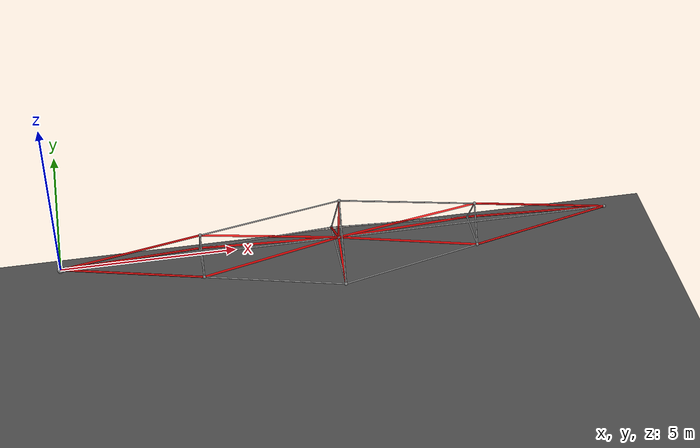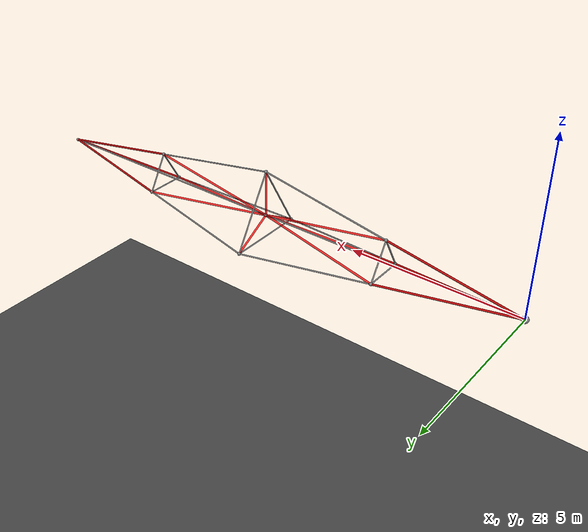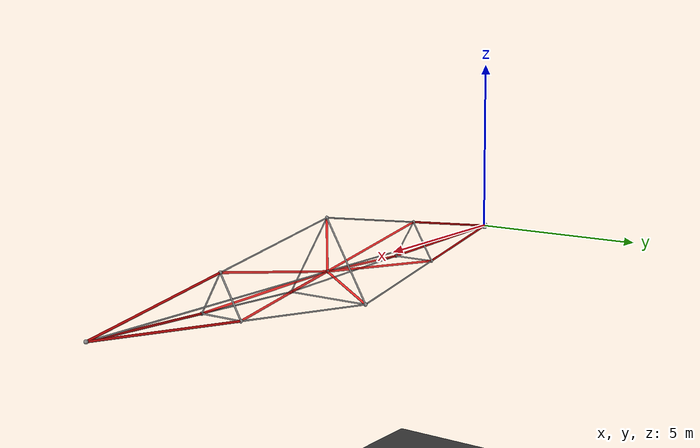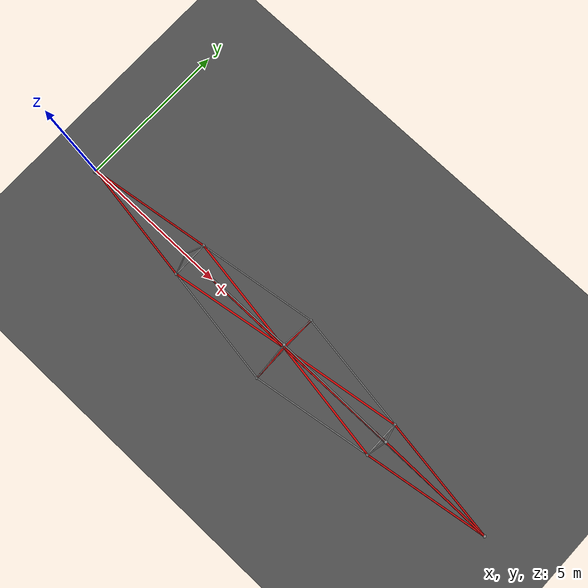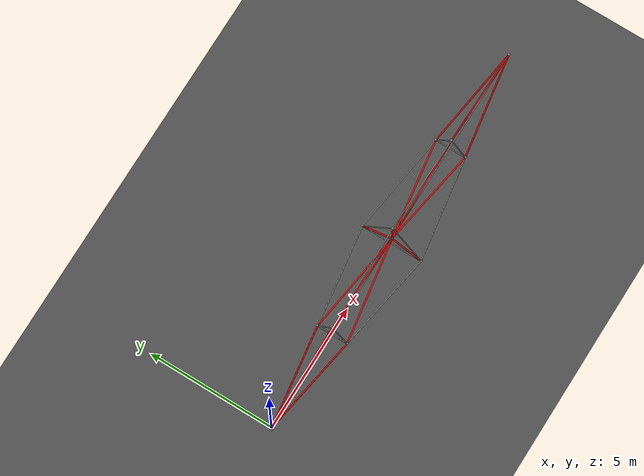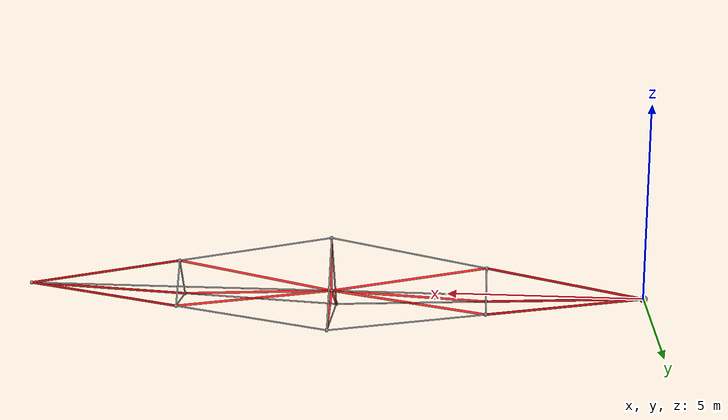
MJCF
<mujoco model="dbar">
    <option timestep="0.01" integrator="RK4" gravity = "0 0 0" collision="predefined" density="1000"/>

    <default>
        <geom size="0.03"/>
        <site size="0.05"/>
    </default>

    <asset>
        <texture type="skybox" builtin="gradient" rgb1="0.6 0.6 0.6" rgb2="0 0 0" width="512" height="512"/>

        <texture name="texplane" type="2d" builtin="checker" rgb1=".25 .25 .25" rgb2=".3 .3 .3" width="512" height="512" mark="cross" markrgb=".8 .8 .8"/>

        <material name="matplane" reflectance="0.3" texture="texplane" texrepeat="1 1" texuniform="true"/>
    </asset>
<worldbody>
<light directional="true" diffuse=".8 .8 .8" specular=".2 .2 .2" pos="0 0 5" dir="0 0 -1">
</light>
<body name="floor" pos="0 0 0">
<geom name="floor" pos="0 0 -10" size="0 0 1" type="plane" material="matplane">
</geom>
<site name="s0" pos="0 0 0" size="0.1">
</site>
</body>
<body name="body0" pos="8.     0.     1.4106">
<joint type="free" pos="0 0 0">
</joint>
<geom name="body0" type="capsule" fromto="0 0 0  0.      0.     -1.4106" rgba="1 0 0 .8">
</geom>
<site name="site0" pos="0 0 0">
</site>
<site name="site1" pos=" 0.      0.     -1.4106">
</site>
</body>
<body name="body1" pos=" 8.     -1.2216 -0.7053">
<joint type="free" pos="0 0 0">
</joint>
<geom name="body1" type="capsule" fromto="0 0 0 0.     1.2216 0.7053" rgba="1 0 0 .8">
</geom>
<site name="site2" pos="0 0 0">
</site>
</body>
<body name="body2" pos=" 8.      1.2216 -0.7053">
<joint type="free" pos="0 0 0">
</joint>
<geom name="body2" type="capsule" fromto="0 0 0  0.     -1.2216  0.7053" rgba="1 0 0 .8">
</geom>
<site name="site3" pos="0 0 0">
</site>
</body>
<body name="body3" pos="0. 0. 0.">
<joint type="free" pos="0 0 0">
</joint>
<geom name="body3" type="capsule" fromto="0 0 0 4.     0.     0.7053" rgba="1 0 0 .8">
</geom>
<site name="site4" pos="0 0 0">
</site>
<site name="site5" pos="4.     0.     0.7053">
</site>
</body>
<body name="body4" pos="0. 0. 0.">
<joint type="free" pos="0 0 0">
</joint>
<geom name="body4" type="capsule" fromto="0 0 0  4.      0.6108 -0.3527" rgba="1 0 0 .8">
</geom>
<site name="site6" pos=" 4.      0.6108 -0.3527">
</site>
</body>
<body name="body5" pos="0. 0. 0.">
<joint type="free" pos="0 0 0">
</joint>
<geom name="body5" type="capsule" fromto="0 0 0  4.     -0.6108 -0.3527" rgba="1 0 0 .8">
</geom>
<site name="site7" pos=" 4.     -0.6108 -0.3527">
</site>
</body>
<body name="body6" pos="8. 0. 0.">
<joint type="free" pos="0 0 0">
</joint>
<geom name="body6" type="capsule" fromto="0 0 0 -4.      0.      0.7053" rgba="1 0 0 .8">
</geom>
<site name="site8" pos="0 0 0">
</site>
</body>
<body name="body7" pos="8. 0. 0.">
<joint type="free" pos="0 0 0">
</joint>
<geom name="body7" type="capsule" fromto="0 0 0 -4.      0.6108 -0.3527" rgba="1 0 0 .8">
</geom>
</body>
<body name="body8" pos="8. 0. 0.">
<joint type="free" pos="0 0 0">
</joint>
<geom name="body8" type="capsule" fromto="0 0 0 -4.     -0.6108 -0.3527" rgba="1 0 0 .8">
</geom>
</body>
<body name="body9" pos="8. 0. 0.">
<joint type="free" pos="0 0 0">
</joint>
<geom name="body9" type="capsule" fromto="0 0 0 4.     0.     0.7053" rgba="1 0 0 .8">
</geom>
<site name="site9" pos="4.     0.     0.7053">
</site>
</body>
<body name="body10" pos="8. 0. 0.">
<joint type="free" pos="0 0 0">
</joint>
<geom name="body10" type="capsule" fromto="0 0 0  4.      0.6108 -0.3527" rgba="1 0 0 .8">
</geom>
<site name="site10" pos=" 4.      0.6108 -0.3527">
</site>
</body>
<body name="body11" pos="8. 0. 0.">
<joint type="free" pos="0 0 0">
</joint>
<geom name="body11" type="capsule" fromto="0 0 0  4.     -0.6108 -0.3527" rgba="1 0 0 .8">
</geom>
<site name="site11" pos=" 4.     -0.6108 -0.3527">
</site>
</body>
<body name="body12" pos="16.  0.  0.">
<joint type="free" pos="0 0 0">
</joint>
<geom name="body12" type="capsule" fromto="0 0 0 -4.      0.      0.7053" rgba="1 0 0 .8">
</geom>
<site name="site12" pos="0 0 0">
</site>
</body>
<body name="body13" pos="16.  0.  0.">
<joint type="free" pos="0 0 0">
</joint>
<geom name="body13" type="capsule" fromto="0 0 0 -4.      0.6108 -0.3527" rgba="1 0 0 .8">
</geom>
</body>
<body name="body14" pos="16.  0.  0.">
<joint type="free" pos="0 0 0">
</joint>
<geom name="body14" type="capsule" fromto="0 0 0 -4.     -0.6108 -0.3527" rgba="1 0 0 .8">
</geom>
</body>
</worldbody>

<tendon>
<spatial name="S1" width="0.02">
<site site="site4">
</site>
<site site="site0">
</site>
</spatial>
<spatial name="S2" width="0.02">
<site site="site4">
</site>
<site site="site3">
</site>
</spatial>
<spatial name="S3" width="0.02">
<site site="site4">
</site>
<site site="site2">
</site>
</spatial>
<spatial name="S4" width="0.02">
<site site="site12">
</site>
<site site="site0">
</site>
</spatial>
<spatial name="S5" width="0.02">
<site site="site12">
</site>
<site site="site3">
</site>
</spatial>
<spatial name="S6" width="0.02">
<site site="site12">
</site>
<site site="site2">
</site>
</spatial>
<spatial name="S7" width="0.02">
<site site="site0">
</site>
<site site="site2">
</site>
</spatial>
<spatial name="S8" width="0.02">
<site site="site2">
</site>
<site site="site3">
</site>
</spatial>
<spatial name="S9" width="0.02">
<site site="site3">
</site>
<site site="site0">
</site>
</spatial>
<spatial name="S10" width="0.02">
<site site="site5">
</site>
<site site="site7">
</site>
</spatial>
<spatial name="S11" width="0.02">
<site site="site7">
</site>
<site site="site6">
</site>
</spatial>
<spatial name="S12" width="0.02">
<site site="site6">
</site>
<site site="site5">
</site>
</spatial>
<spatial name="S13" width="0.02">
<site site="site4">
</site>
<site site="site8">
</site>
</spatial>
<spatial name="S14" width="0.02">
<site site="site9">
</site>
<site site="site11">
</site>
</spatial>
<spatial name="S15" width="0.02">
<site site="site11">
</site>
<site site="site10">
</site>
</spatial>
<spatial name="S16" width="0.02">
<site site="site10">
</site>
<site site="site9">
</site>
</spatial>
<spatial name="S17" width="0.02">
<site site="site8">
</site>
<site site="site12">
</site>
</spatial>
</tendon>

<equality>
<connect active="true" name="body82body2" body1="body8" body2="body2" anchor="0 0 0">
</connect>
<connect active="true" name="body82body7" body1="body8" body2="body7" anchor="0 0 0">
</connect>
<connect active="true" name="body82body9" body1="body8" body2="body9" anchor="0 0 0">
</connect>
<connect active="true" name="body82body10" body1="body8" body2="body10" anchor="0 0 0">
</connect>
<connect active="true" name="body82body0" body1="body8" body2="body0" anchor="0 0 0">
</connect>
<connect active="true" name="body82body1" body1="body8" body2="body1" anchor="0 0 0">
</connect>
<connect active="true" name="body82body6" body1="body8" body2="body6" anchor="0 0 0">
</connect>
<connect active="true" name="body82body11" body1="body8" body2="body11" anchor="0 0 0">
</connect>
<connect active="true" name="body42body3" body1="body4" body2="body3" anchor="0 0 0">
</connect>
<connect active="true" name="body42body5" body1="body4" body2="body5" anchor="0 0 0">
</connect>
<connect active="true" name="body32body6" body1="body3" body2="body6" anchor="4.     0.     0.7053">
</connect>
<connect active="true" name="body72body4" body1="body7" body2="body4" anchor="-4.      0.6108 -0.3527">
</connect>
<connect active="true" name="body52body8" body1="body5" body2="body8" anchor=" 4.     -0.6108 -0.3527">
</connect>
<connect active="true" name="body92body12" body1="body9" body2="body12" anchor="4.     0.     0.7053">
</connect>
<connect active="true" name="body102body13" body1="body10" body2="body13" anchor=" 4.      0.6108 -0.3527">
</connect>
<connect active="true" name="body112body14" body1="body11" body2="body14" anchor=" 4.     -0.6108 -0.3527">
</connect>
<connect active="true" name="body132body12" body1="body13" body2="body12" anchor="0 0 0">
</connect>
<connect active="true" name="body132body14" body1="body13" body2="body14" anchor="0 0 0">
</connect>
</equality>

<actuator>
<position tendon="S1" kp="0">
</position>
<position tendon="S2" kp="0">
</position>
<position tendon="S3" kp="0">
</position>
<position tendon="S4" kp="0">
</position>
<position tendon="S5" kp="0">
</position>
<position tendon="S6" kp="0">
</position>
<position tendon="S7" kp="0">
</position>
<position tendon="S8" kp="0">
</position>
<position tendon="S9" kp="0">
</position>
<position tendon="S10" kp="0">
</position>
<position tendon="S11" kp="0">
</position>
<position tendon="S12" kp="0">
</position>
<position tendon="S13" kp="0">
</position>
<position tendon="S14" kp="0">
</position>
<position tendon="S15" kp="0">
</position>
<position tendon="S16" kp="0">
</position>
<position tendon="S17" kp="0">
</position>
</actuator>

</mujoco>
